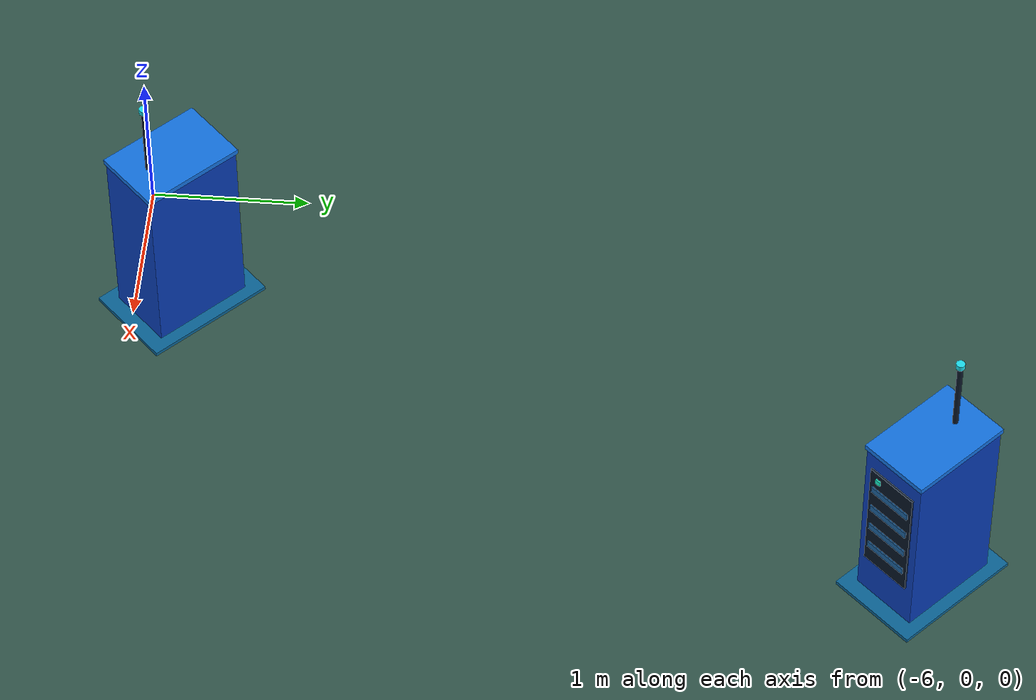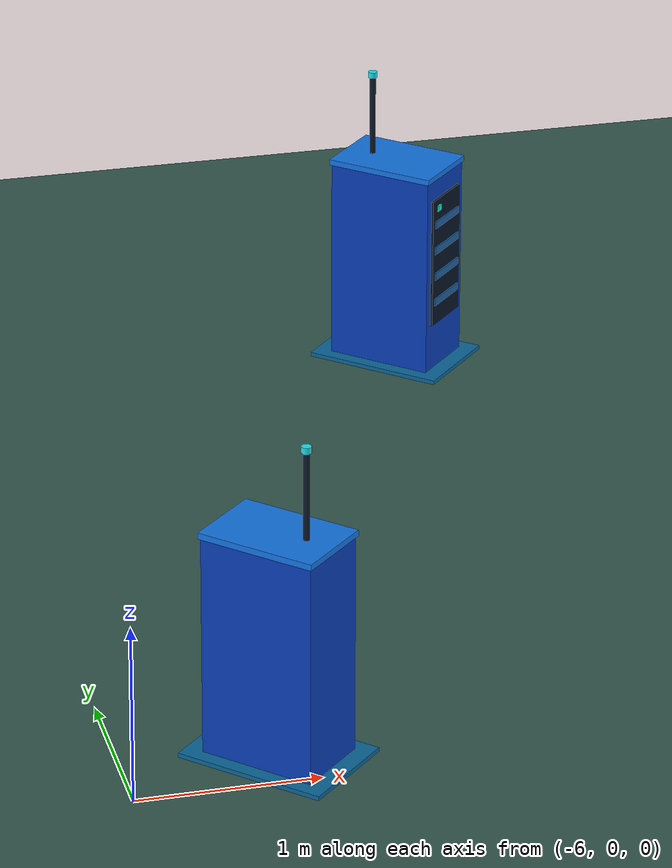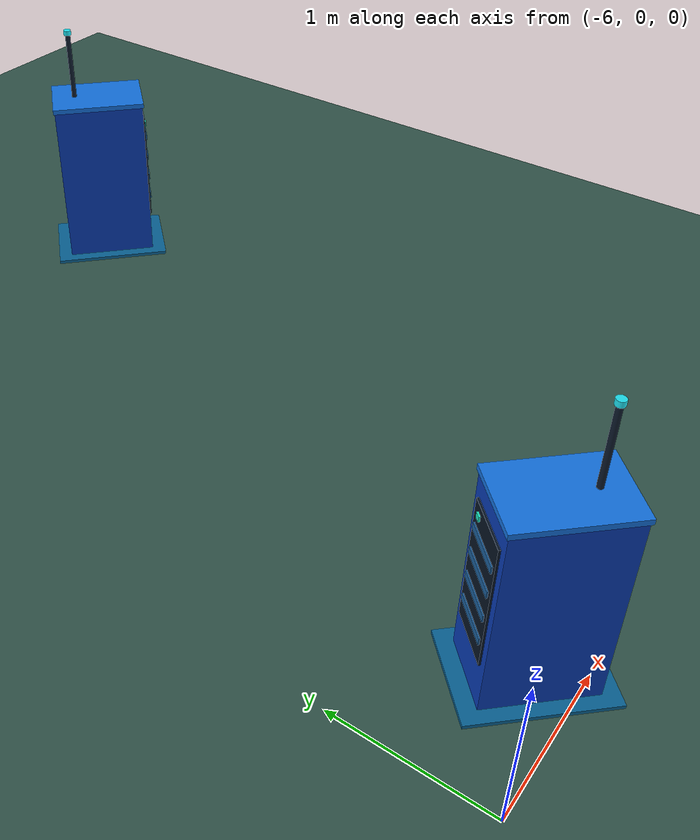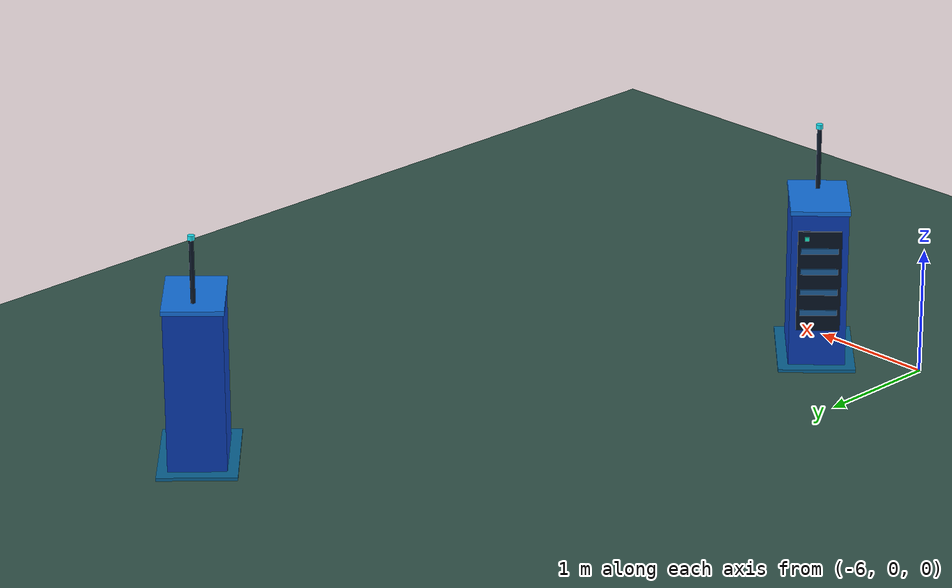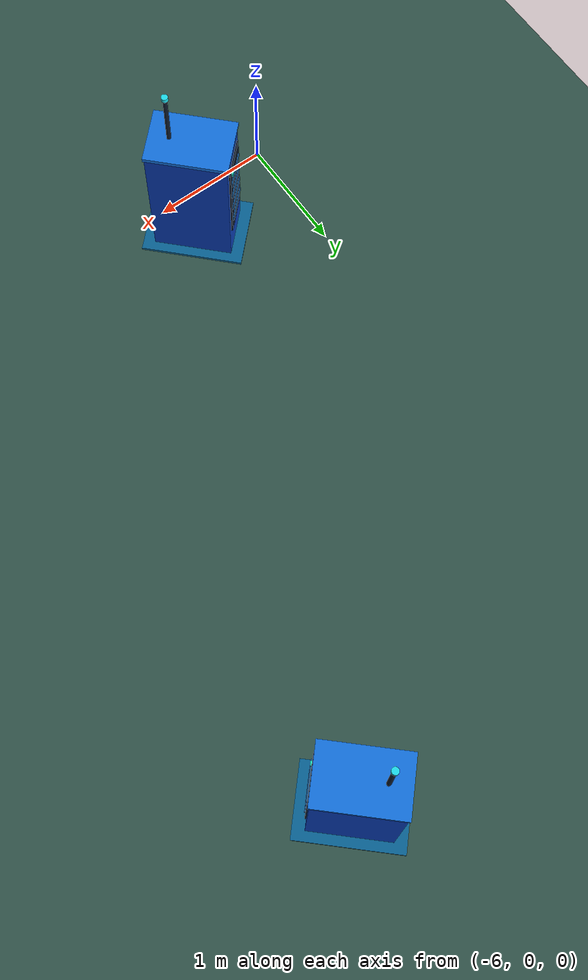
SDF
<sdf version="1.9">
 <world name="monaco">
  <model name="ground">
   <static>true</static>
   <link name="body">
    <visual name="ground">
     <pose>0 0 -0.08 0 0 0</pose>
     <geometry><box><size>100 100 0.15</size></box></geometry>
     <material><ambient>0.20 0.34 0.30 1</ambient><diffuse>0.20 0.34 0.30 1</diffuse></material>
    </visual>
    <collision name="ground_collision">
     <pose>0 0 -0.08 0 0 0</pose>
     <geometry><box><size>100 100 0.15</size></box></geometry>
    </collision>
   </link>
  </model>
  <model name="edge_fill_01">
   <static>true</static>
   <pose>-3.29514299174 4.99834405835 0 0 0 -0.753524903213</pose>
   <link name="body">
    <collision name="chassis_collision">
     <pose>0 0 0.14 0 0 0</pose>
     <geometry><box><size>0.64 0.32 0.13</size></box></geometry>
    </collision>
    <visual name="parking_bay">
     <pose>0 0 0.012 0 0 0</pose>
     <geometry><box><size>0.86 0.60 0.025</size></box></geometry>
     <material><ambient>0.04 0.40 0.60 1</ambient><diffuse>0.04 0.40 0.60 1</diffuse></material>
    </visual>
    <visual name="server_cabinet">
     <pose>0 0 0.65 0 0 0</pose>
     <geometry><box><size>0.66 0.44 1.25</size></box></geometry>
     <material><ambient>0.035 0.24 0.72 1</ambient><diffuse>0.035 0.24 0.72 1</diffuse></material>
    </visual>
    <visual name="cabinet_top">
     <pose>0 0 1.285 0 0 0</pose>
     <geometry><box><size>0.68 0.46 0.035</size></box></geometry>
     <material><ambient>0.08 0.46 0.90 1</ambient><diffuse>0.08 0.46 0.90 1</diffuse></material>
    </visual>
    <visual name="front_panel">
     <pose>0.337 0 0.73 0 0 0</pose>
     <geometry><box><size>0.014 0.34 0.82</size></box></geometry>
     <material><ambient>0.025 0.075 0.14 1</ambient><diffuse>0.025 0.075 0.14 1</diffuse></material>
    </visual>
    <visual name="rack_slot_0">
     <pose>0.347 0 0.47 0 0 0</pose>
     <geometry><box><size>0.012 0.29 0.045</size></box></geometry>
     <material><ambient>0.11 0.38 0.62 1</ambient><diffuse>0.11 0.38 0.62 1</diffuse></material>
    </visual>
    <visual name="rack_slot_1">
     <pose>0.347 0 0.64 0 0 0</pose>
     <geometry><box><size>0.012 0.29 0.045</size></box></geometry>
     <material><ambient>0.11 0.38 0.62 1</ambient><diffuse>0.11 0.38 0.62 1</diffuse></material>
    </visual>
    <visual name="rack_slot_2">
     <pose>0.347 0 0.81 0 0 0</pose>
     <geometry><box><size>0.012 0.29 0.045</size></box></geometry>
     <material><ambient>0.11 0.38 0.62 1</ambient><diffuse>0.11 0.38 0.62 1</diffuse></material>
    </visual>
    <visual name="rack_slot_3">
     <pose>0.347 0 0.98 0 0 0</pose>
     <geometry><box><size>0.012 0.29 0.045</size></box></geometry>
     <material><ambient>0.11 0.38 0.62 1</ambient><diffuse>0.11 0.38 0.62 1</diffuse></material>
    </visual>
    <visual name="status_light">
     <pose>0.347 -0.10 1.08 0 0 0</pose>
     <geometry><box><size>0.015 0.035 0.035</size></box></geometry>
     <material><ambient>0.10 0.95 0.80 1</ambient><diffuse>0.10 0.95 0.80 1</diffuse></material>
    </visual>
    <visual name="antenna">
     <pose>-0.17 0 1.55 0 0 0</pose>
     <geometry><cylinder><radius>0.018</radius><length>0.5</length></cylinder></geometry>
     <material><ambient>0.05 0.10 0.17 1</ambient><diffuse>0.05 0.10 0.17 1</diffuse></material>
    </visual>
    <visual name="antenna_tip">
     <pose>-0.17 0 1.81 0 0 0</pose>
     <geometry><cylinder><radius>0.027</radius><length>0.035</length></cylinder></geometry>
     <material><ambient>0.12 0.90 0.96 1</ambient><diffuse>0.12 0.90 0.96 1</diffuse></material>
    </visual>
   </link>
  </model>
  <model name="edge_fill_04">
   <static>true</static>
   <pose>-5.16786145114 0.289776903563 0 0 0 2.34641301134</pose>
   <link name="body">
    <collision name="chassis_collision">
     <pose>0 0 0.14 0 0 0</pose>
     <geometry><box><size>0.64 0.32 0.13</size></box></geometry>
    </collision>
    <visual name="parking_bay">
     <pose>0 0 0.012 0 0 0</pose>
     <geometry><box><size>0.86 0.60 0.025</size></box></geometry>
     <material><ambient>0.04 0.40 0.60 1</ambient><diffuse>0.04 0.40 0.60 1</diffuse></material>
    </visual>
    <visual name="server_cabinet">
     <pose>0 0 0.65 0 0 0</pose>
     <geometry><box><size>0.66 0.44 1.25</size></box></geometry>
     <material><ambient>0.035 0.24 0.72 1</ambient><diffuse>0.035 0.24 0.72 1</diffuse></material>
    </visual>
    <visual name="cabinet_top">
     <pose>0 0 1.285 0 0 0</pose>
     <geometry><box><size>0.68 0.46 0.035</size></box></geometry>
     <material><ambient>0.08 0.46 0.90 1</ambient><diffuse>0.08 0.46 0.90 1</diffuse></material>
    </visual>
    <visual name="front_panel">
     <pose>0.337 0 0.73 0 0 0</pose>
     <geometry><box><size>0.014 0.34 0.82</size></box></geometry>
     <material><ambient>0.025 0.075 0.14 1</ambient><diffuse>0.025 0.075 0.14 1</diffuse></material>
    </visual>
    <visual name="rack_slot_0">
     <pose>0.347 0 0.47 0 0 0</pose>
     <geometry><box><size>0.012 0.29 0.045</size></box></geometry>
     <material><ambient>0.11 0.38 0.62 1</ambient><diffuse>0.11 0.38 0.62 1</diffuse></material>
    </visual>
    <visual name="rack_slot_1">
     <pose>0.347 0 0.64 0 0 0</pose>
     <geometry><box><size>0.012 0.29 0.045</size></box></geometry>
     <material><ambient>0.11 0.38 0.62 1</ambient><diffuse>0.11 0.38 0.62 1</diffuse></material>
    </visual>
    <visual name="rack_slot_2">
     <pose>0.347 0 0.81 0 0 0</pose>
     <geometry><box><size>0.012 0.29 0.045</size></box></geometry>
     <material><ambient>0.11 0.38 0.62 1</ambient><diffuse>0.11 0.38 0.62 1</diffuse></material>
    </visual>
    <visual name="rack_slot_3">
     <pose>0.347 0 0.98 0 0 0</pose>
     <geometry><box><size>0.012 0.29 0.045</size></box></geometry>
     <material><ambient>0.11 0.38 0.62 1</ambient><diffuse>0.11 0.38 0.62 1</diffuse></material>
    </visual>
    <visual name="status_light">
     <pose>0.347 -0.10 1.08 0 0 0</pose>
     <geometry><box><size>0.015 0.035 0.035</size></box></geometry>
     <material><ambient>0.10 0.95 0.80 1</ambient><diffuse>0.10 0.95 0.80 1</diffuse></material>
    </visual>
    <visual name="antenna">
     <pose>-0.17 0 1.55 0 0 0</pose>
     <geometry><cylinder><radius>0.018</radius><length>0.5</length></cylinder></geometry>
     <material><ambient>0.05 0.10 0.17 1</ambient><diffuse>0.05 0.10 0.17 1</diffuse></material>
    </visual>
    <visual name="antenna_tip">
     <pose>-0.17 0 1.81 0 0 0</pose>
     <geometry><cylinder><radius>0.027</radius><length>0.035</length></cylinder></geometry>
     <material><ambient>0.12 0.90 0.96 1</ambient><diffuse>0.12 0.90 0.96 1</diffuse></material>
    </visual>
   </link>
  </model>
 </world>
</sdf>
